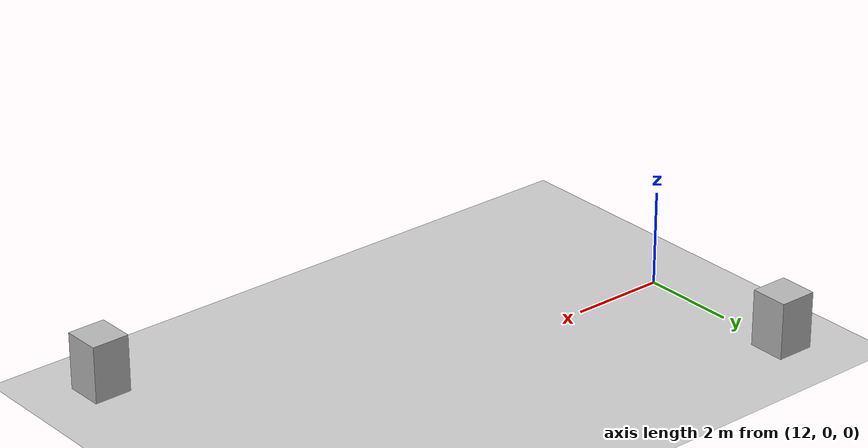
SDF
<?xml version="1.0"?>
<sdf version="1.6">
  <world name="v2-04g-r1-cruise-s4921">
    <gravity>0 0 -9.81</gravity>
    <physics name="v2_deterministic" type="ode">
      <max_step_size>0.002</max_step_size>
      <real_time_update_rate>500</real_time_update_rate>
    </physics>
    <include>
      <uri>model://sun</uri>
    </include>
    <include>
      <uri>model://ground_plane</uri>
    </include>
    <model name="cruise-left">
      <static>true</static>
      <pose>11.978365087 3.540740659 0.600000000 0 0 -0.009100484</pose>
      <link name="link">
        <collision name="collision">
          <geometry>
            <box>
              <size>0.800000 0.800000 1.200000</size>
            </box>
          </geometry>
        </collision>
        <visual name="visual">
          <geometry>
            <box>
              <size>0.800000 0.800000 1.200000</size>
            </box>
          </geometry>
        </visual>
      </link>
    </model>
    <model name="cruise-right">
      <static>true</static>
      <pose>23.039372378 -3.547049845 0.600000000 0 0 0.007758762</pose>
      <link name="link">
        <collision name="collision">
          <geometry>
            <box>
              <size>0.800000 0.800000 1.200000</size>
            </box>
          </geometry>
        </collision>
        <visual name="visual">
          <geometry>
            <box>
              <size>0.800000 0.800000 1.200000</size>
            </box>
          </geometry>
        </visual>
      </link>
    </model>
  </world>
</sdf>
